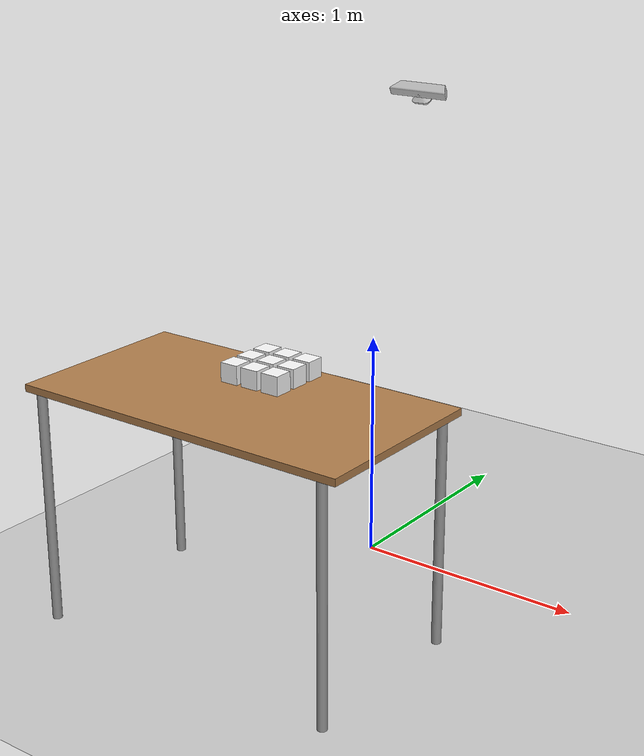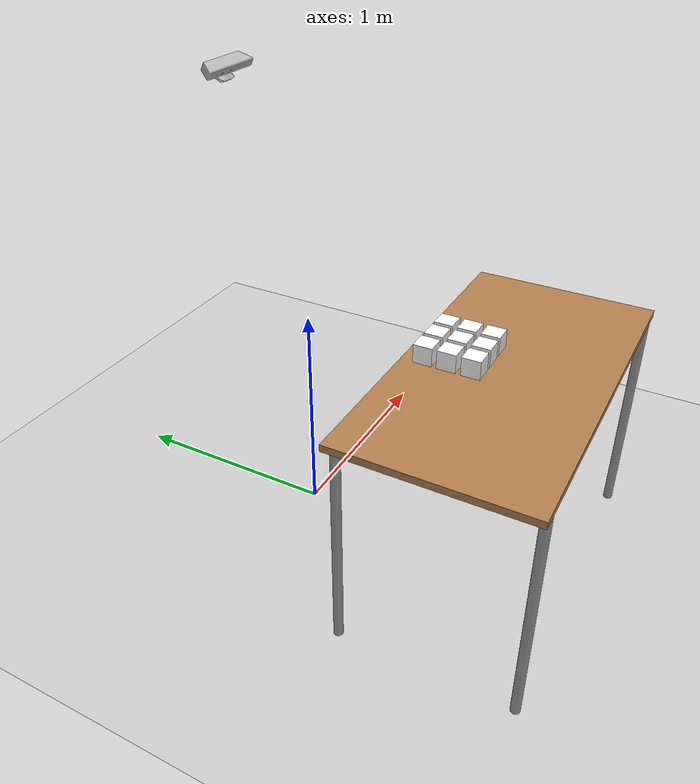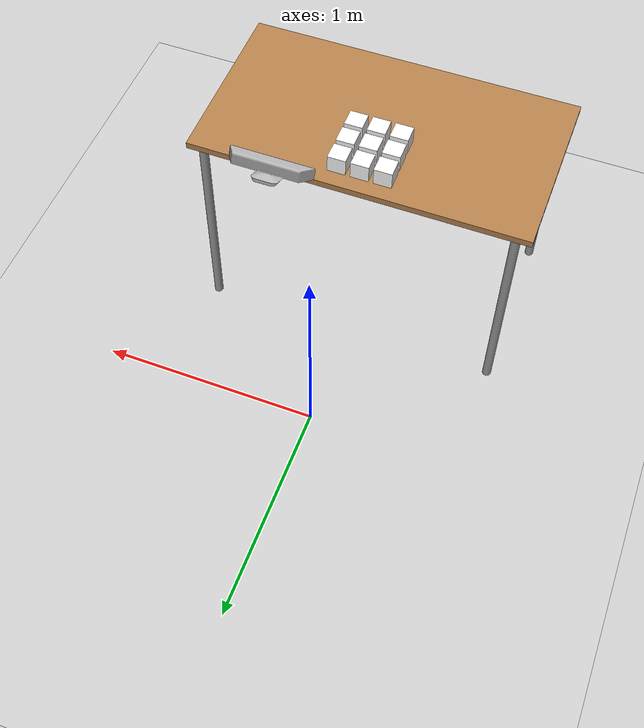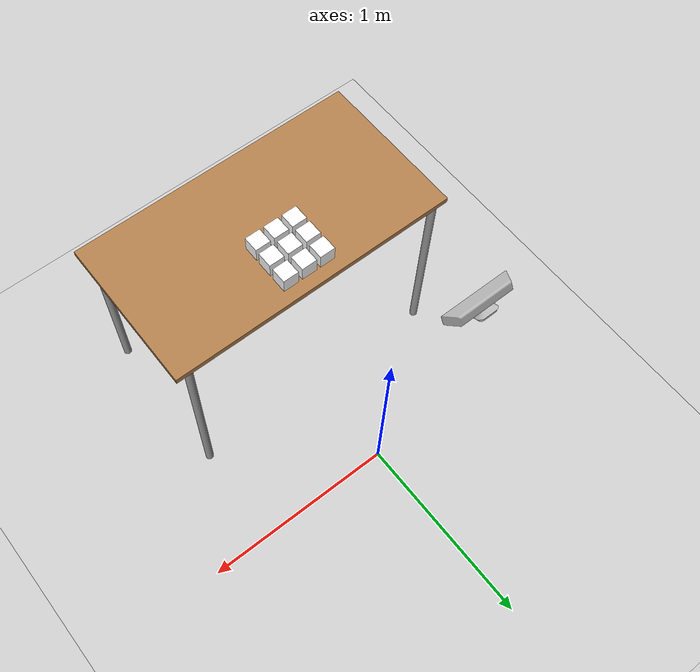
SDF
<sdf version="1.6">
 <world name="default">
  <model name="ground_plane">
   <pose>0.5 -0.5 0 0 -0 0</pose>
   <static>1</static>
   <link name="link">
    <collision name="collision">
     <geometry><plane><normal>0 0 1</normal><size>100 100</size></plane></geometry>
     <surface><friction><ode><mu>100</mu><mu2>50</mu2></ode></friction></surface>
    </collision>
    <visual name="visual">
     <cast_shadows>0</cast_shadows>
     <geometry><plane><normal>0 0 1</normal><size>100 100</size></plane></geometry>
     <material>
      <script><uri>file://media/materials/scripts/gazebo.material</uri><name>Gazebo/Grey</name></script>
     </material>
    </visual>
   </link>
  </model>
  <model name="kinect">
   <pose>0 0.3 2 -0 0.5 -1.57</pose>
   <link name="link">
    <inertial>
     <mass>0.1</mass>
     <inertia><ixx>1</ixx><ixy>0</ixy><ixz>0</ixz><iyy>1</iyy><iyz>0</iyz><izz>1</izz></inertia>
    </inertial>
    <collision name="collision"><geometry><box><size>0.073 0.276 0.072</size></box></geometry></collision>
    <visual name="visual"><geometry><mesh><uri>model://kinect/meshes/kinect.dae</uri></mesh></geometry></visual>
    <sensor name="camera" type="depth">
     <update_rate>20</update_rate>
     <camera name="__default__">
      <horizontal_fov>1.0472</horizontal_fov>
      <image><width>640</width><height>480</height><format>R8G8B8</format></image>
      <clip><near>0.05</near><far>3</far></clip>
     </camera>
     <plugin name="camera_plugin" filename="libgazebo_ros_openni_kinect.so">
      <baseline>0.2</baseline>
      <alwaysOn>1</alwaysOn>
      <updateRate>0.0</updateRate>
      <cameraName>camera_ir</cameraName>
      <imageTopicName>/camera/depth/image_raw</imageTopicName>
      <cameraInfoTopicName>/camera/depth/camera_info</cameraInfoTopicName>
      <depthImageTopicName>/camera/depth/image_raw</depthImageTopicName>
      <depthImageInfoTopicName>/camera/depth/camera_info</depthImageInfoTopicName>
      <pointCloudTopicName>/camera/depth/points</pointCloudTopicName>
      <frameName>camera_link</frameName>
      <pointCloudCutoff>0.05</pointCloudCutoff>
      <distortionK1>0</distortionK1>
      <distortionK2>0</distortionK2>
      <distortionK3>0</distortionK3>
      <distortionT1>0</distortionT1>
      <distortionT2>0</distortionT2>
      <CxPrime>0</CxPrime>
      <Cx>0</Cx>
      <Cy>0</Cy>
      <focalLength>0</focalLength>
      <hackBaseline>0</hackBaseline>
     </plugin>
    </sensor>
    <gravity>0</gravity>
   </link>
   <static>1</static>
  </model>
  <model name="table">
   <static>1</static>
   <link name="link">
    <collision name="surface">
     <pose>0 0 1 0 -0 0</pose>
     <geometry><box><size>1.5 0.8 0.03</size></box></geometry>
     <surface><friction><ode><mu>0.6</mu><mu2>0.6</mu2></ode></friction></surface>
    </collision>
    <visual name="visual1">
     <pose>0 0 1 0 -0 0</pose>
     <geometry><box><size>1.5 0.8 0.03</size></box></geometry>
     <material>
      <script><uri>file://media/materials/scripts/gazebo.material</uri><name>Gazebo/Wood</name></script>
     </material>
    </visual>
    <collision name="front_left_leg">
     <pose>0.68 0.38 0.5 0 -0 0</pose>
     <geometry><cylinder><radius>0.02</radius><length>1</length></cylinder></geometry>
    </collision>
    <visual name="front_left_leg">
     <pose>0.68 0.38 0.5 0 -0 0</pose>
     <geometry><cylinder><radius>0.02</radius><length>1</length></cylinder></geometry>
     <material>
      <script><uri>file://media/materials/scripts/gazebo.material</uri><name>Gazebo/Grey</name></script>
     </material>
    </visual>
    <collision name="front_right_leg">
     <pose>0.68 -0.38 0.5 0 -0 0</pose>
     <geometry><cylinder><radius>0.02</radius><length>1</length></cylinder></geometry>
    </collision>
    <visual name="front_right_leg">
     <pose>0.68 -0.38 0.5 0 -0 0</pose>
     <geometry><cylinder><radius>0.02</radius><length>1</length></cylinder></geometry>
     <material>
      <script><uri>file://media/materials/scripts/gazebo.material</uri><name>Gazebo/Grey</name></script>
     </material>
    </visual>
    <collision name="back_right_leg">
     <pose>-0.68 -0.38 0.5 0 -0 0</pose>
     <geometry><cylinder><radius>0.02</radius><length>1</length></cylinder></geometry>
    </collision>
    <visual name="back_right_leg">
     <pose>-0.68 -0.38 0.5 0 -0 0</pose>
     <geometry><cylinder><radius>0.02</radius><length>1</length></cylinder></geometry>
     <material>
      <script><uri>file://media/materials/scripts/gazebo.material</uri><name>Gazebo/Grey</name></script>
     </material>
    </visual>
    <collision name="back_left_leg">
     <pose>-0.68 0.38 0.5 0 -0 0</pose>
     <geometry><cylinder><radius>0.02</radius><length>1</length></cylinder></geometry>
    </collision>
    <visual name="back_left_leg">
     <pose>-0.68 0.38 0.5 0 -0 0</pose>
     <geometry><cylinder><radius>0.02</radius><length>1</length></cylinder></geometry>
     <material>
      <script><uri>file://media/materials/scripts/gazebo.material</uri><name>Gazebo/Grey</name></script>
     </material>
    </visual>
   </link>
   <pose>0 -0.9 0 0 -0 0</pose>
  </model>
  <model name="number1_0.1">
   <link name="link">
    <inertial>
     <mass>1</mass>
     <inertia><ixx>1</ixx><ixy>0</ixy><ixz>0</ixz><iyy>1</iyy><iyz>0</iyz><izz>1</izz></inertia>
    </inertial>
    <visual name="visual">
     <geometry><mesh><uri>model://number1/meshes/number.dae</uri><scale>0.1 0.1 0.1</scale></mesh></geometry>
     <material>
      <script>
       <uri>model://number1/materials/scripts</uri>
       <uri>model://number1/materials/textures</uri>
       <name>Number/One</name>
      </script>
      <shader type="vertex"><normal_map>__default__</normal_map></shader>
      <ambient>1 1 1 1</ambient>
      <diffuse>1 1 1 1</diffuse>
      <specular>0 0 0 1</specular>
      <emissive>0 0 0 1</emissive>
     </material>
    </visual>
   </link>
   <static>1</static>
   <pose>-0.1 -0.6 1.065 0 -0 0</pose>
  </model>
  <model name="number2_0.1">
   <link name="link">
    <inertial>
     <mass>1</mass>
     <inertia><ixx>1</ixx><ixy>0</ixy><ixz>0</ixz><iyy>1</iyy><iyz>0</iyz><izz>1</izz></inertia>
    </inertial>
    <visual name="visual">
     <geometry><mesh><uri>model://number1/meshes/number.dae</uri><scale>0.1 0.1 0.1</scale></mesh></geometry>
     <material>
      <script>
       <uri>model://number2/materials/scripts</uri>
       <uri>model://number2/materials/textures</uri>
       <name>Number/Two</name>
      </script>
      <shader type="vertex"><normal_map>__default__</normal_map></shader>
      <ambient>1 1 1 1</ambient>
      <diffuse>1 1 1 1</diffuse>
      <specular>0 0 0 1</specular>
      <emissive>0 0 0 1</emissive>
     </material>
    </visual>
   </link>
   <static>1</static>
   <pose>0 -0.6 1.065 0 -0 0</pose>
  </model>
  <model name="number3_0.1">
   <link name="link">
    <inertial>
     <mass>1</mass>
     <inertia><ixx>1</ixx><ixy>0</ixy><ixz>0</ixz><iyy>1</iyy><iyz>0</iyz><izz>1</izz></inertia>
    </inertial>
    <visual name="visual">
     <geometry><mesh><uri>model://number1/meshes/number.dae</uri><scale>0.1 0.1 0.1</scale></mesh></geometry>
     <material>
      <script>
       <uri>model://number3/materials/scripts</uri>
       <uri>model://number3/materials/textures</uri>
       <name>Number/Three</name>
      </script>
      <shader type="vertex"><normal_map>__default__</normal_map></shader>
      <ambient>1 1 1 1</ambient>
      <diffuse>1 1 1 1</diffuse>
      <specular>0 0 0 1</specular>
      <emissive>0 0 0 1</emissive>
     </material>
    </visual>
   </link>
   <static>1</static>
   <pose>0.1 -0.6 1.065 0 -0 0</pose>
  </model>
  <model name="number4_0.1">
   <link name="link">
    <inertial>
     <mass>1</mass>
     <inertia><ixx>1</ixx><ixy>0</ixy><ixz>0</ixz><iyy>1</iyy><iyz>0</iyz><izz>1</izz></inertia>
    </inertial>
    <visual name="visual">
     <geometry><mesh><uri>model://number1/meshes/number.dae</uri><scale>0.1 0.1 0.1</scale></mesh></geometry>
     <material>
      <script>
       <uri>model://number4/materials/scripts</uri>
       <uri>model://number4/materials/textures</uri>
       <name>Number/Four</name>
      </script>
      <shader type="vertex"><normal_map>__default__</normal_map></shader>
      <ambient>1 1 1 1</ambient>
      <diffuse>1 1 1 1</diffuse>
      <specular>0 0 0 1</specular>
      <emissive>0 0 0 1</emissive>
     </material>
    </visual>
   </link>
   <static>1</static>
   <pose>-0.1 -0.7 1.065 0 -0 0</pose>
  </model>
  <model name="number5_0.1">
   <link name="link">
    <inertial>
     <mass>1</mass>
     <inertia><ixx>1</ixx><ixy>0</ixy><ixz>0</ixz><iyy>1</iyy><iyz>0</iyz><izz>1</izz></inertia>
    </inertial>
    <visual name="visual">
     <geometry><mesh><uri>model://number1/meshes/number.dae</uri><scale>0.1 0.1 0.1</scale></mesh></geometry>
     <material>
      <script>
       <uri>model://number5/materials/scripts</uri>
       <uri>model://number5/materials/textures</uri>
       <name>Number/Five</name>
      </script>
      <shader type="vertex"><normal_map>__default__</normal_map></shader>
      <ambient>1 1 1 1</ambient>
      <diffuse>1 1 1 1</diffuse>
      <specular>0 0 0 1</specular>
      <emissive>0 0 0 1</emissive>
     </material>
    </visual>
   </link>
   <static>1</static>
   <pose>0 -0.7 1.065 0 -0 0</pose>
  </model>
  <model name="number6_0.1">
   <link name="link">
    <inertial>
     <mass>1</mass>
     <inertia><ixx>1</ixx><ixy>0</ixy><ixz>0</ixz><iyy>1</iyy><iyz>0</iyz><izz>1</izz></inertia>
    </inertial>
    <visual name="visual">
     <geometry><mesh><uri>model://number1/meshes/number.dae</uri><scale>0.1 0.1 0.1</scale></mesh></geometry>
     <material>
      <script>
       <uri>model://number6/materials/scripts</uri>
       <uri>model://number6/materials/textures</uri>
       <name>Number/Six</name>
      </script>
      <shader type="vertex"><normal_map>__default__</normal_map></shader>
      <ambient>1 1 1 1</ambient>
      <diffuse>1 1 1 1</diffuse>
      <specular>0 0 0 1</specular>
      <emissive>0 0 0 1</emissive>
     </material>
    </visual>
   </link>
   <static>1</static>
   <pose>0.1 -0.7 1.065 0 -0 0</pose>
  </model>
  <model name="number7_0.1">
   <link name="link">
    <inertial>
     <mass>1</mass>
     <inertia><ixx>1</ixx><ixy>0</ixy><ixz>0</ixz><iyy>1</iyy><iyz>0</iyz><izz>1</izz></inertia>
    </inertial>
    <visual name="visual">
     <geometry><mesh><uri>model://number1/meshes/number.dae</uri><scale>0.1 0.1 0.1</scale></mesh></geometry>
     <material>
      <script>
       <uri>model://number7/materials/scripts</uri>
       <uri>model://number7/materials/textures</uri>
       <name>Number/Seven</name>
      </script>
      <shader type="vertex"><normal_map>__default__</normal_map></shader>
      <ambient>1 1 1 1</ambient>
      <diffuse>1 1 1 1</diffuse>
      <specular>0 0 0 1</specular>
      <emissive>0 0 0 1</emissive>
     </material>
    </visual>
   </link>
   <static>1</static>
   <pose>-0.1 -0.8 1.065 0 -0 0</pose>
  </model>
  <model name="number8_0.1">
   <link name="link">
    <inertial>
     <mass>1</mass>
     <inertia><ixx>1</ixx><ixy>0</ixy><ixz>0</ixz><iyy>1</iyy><iyz>0</iyz><izz>1</izz></inertia>
    </inertial>
    <visual name="visual">
     <geometry><mesh><uri>model://number1/meshes/number.dae</uri><scale>0.1 0.1 0.1</scale></mesh></geometry>
     <material>
      <script>
       <uri>model://number8/materials/scripts</uri>
       <uri>model://number8/materials/textures</uri>
       <name>Number/Eight</name>
      </script>
      <shader type="vertex"><normal_map>__default__</normal_map></shader>
      <ambient>1 1 1 1</ambient>
      <diffuse>1 1 1 1</diffuse>
      <specular>0 0 0 1</specular>
      <emissive>0 0 0 1</emissive>
     </material>
    </visual>
   </link>
   <static>1</static>
   <pose>0 -0.8 1.065 0 -0 0</pose>
  </model>
  <model name="number9_0.1">
   <link name="link">
    <inertial>
     <mass>1</mass>
     <inertia><ixx>1</ixx><ixy>0</ixy><ixz>0</ixz><iyy>1</iyy><iyz>0</iyz><izz>1</izz></inertia>
    </inertial>
    <visual name="visual">
     <geometry><mesh><uri>model://number1/meshes/number.dae</uri><scale>0.1 0.1 0.1</scale></mesh></geometry>
     <material>
      <script>
       <uri>model://number9/materials/scripts</uri>
       <uri>model://number9/materials/textures</uri>
       <name>Number/Nine</name>
      </script>
      <shader type="vertex"><normal_map>__default__</normal_map></shader>
      <ambient>1 1 1 1</ambient>
      <diffuse>1 1 1 1</diffuse>
      <specular>0 0 0 1</specular>
      <emissive>0 0 0 1</emissive>
     </material>
    </visual>
   </link>
   <static>1</static>
   <pose>0.1 -0.8 1.065 0 -0 0</pose>
  </model>
 </world>
</sdf>
